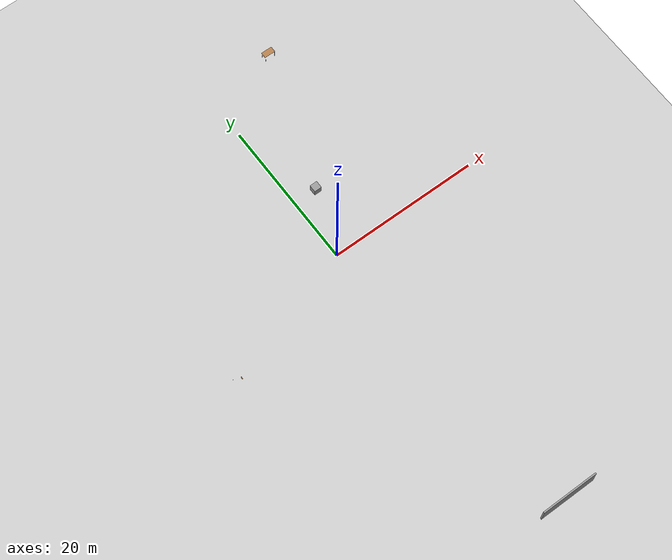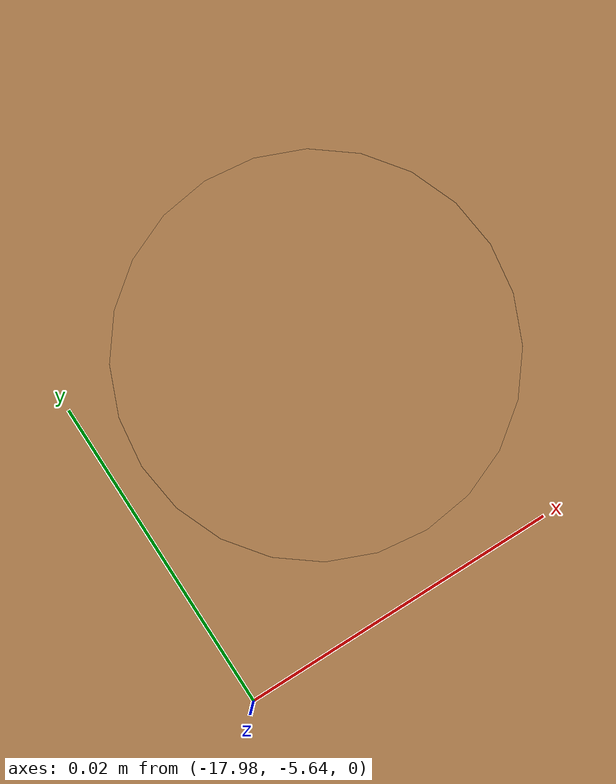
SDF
<sdf version="1.7">
 <world name="default">
  <light name="sun" type="directional">
   <pose>0 0 10 0 -0 0</pose>
   <diffuse>0.8 0.8 0.8 1</diffuse>
   <specular>0.2 0.2 0.2 1</specular>
   <attenuation>
    <range>1000</range>
    <constant>0.9</constant>
    <linear>0.01</linear>
    <quadratic>0.001</quadratic>
   </attenuation>
   <direction>-0.5 0.1 -0.9</direction>
   <spot><inner_angle>0</inner_angle><outer_angle>0</outer_angle><falloff>0</falloff></spot>
  </light>
  <model name="ground_plane">
   <static>1</static>
   <link name="link">
    <collision name="collision">
     <geometry><plane><normal>0 0 1</normal><size>100 100</size></plane></geometry>
     <surface>
      <contact><collide_bitmask>65535</collide_bitmask></contact>
      <friction><ode><mu>100</mu><mu2>50</mu2></ode></friction>
     </surface>
    </collision>
    <visual name="visual">
     <cast_shadows>0</cast_shadows>
     <geometry><plane><normal>0 0 1</normal><size>100 100</size></plane></geometry>
     <material>
      <script><uri>file://media/materials/scripts/gazebo.material</uri><name>Gazebo/Grey</name></script>
     </material>
    </visual>
   </link>
  </model>
  <gravity>0 0 -9.8</gravity>
  <magnetic_field>6e-06 2.3e-05 -4.2e-05</magnetic_field>
  <atmosphere type="adiabatic"/>
  <physics type="ode">
   <max_step_size>0.001</max_step_size>
   <real_time_factor>1</real_time_factor>
   <real_time_update_rate>1000</real_time_update_rate>
  </physics>
  <scene><ambient>0.4 0.4 0.4 1</ambient><background>0.7 0.7 0.7 1</background><shadows>1</shadows></scene>
  <spherical_coordinates>
   <surface_model>EARTH_WGS84</surface_model>
   <latitude_deg>0</latitude_deg>
   <longitude_deg>0</longitude_deg>
   <elevation>0</elevation>
   <heading_deg>0</heading_deg>
  </spherical_coordinates>
  <light name="user_point_light_0" type="point">
   <pose>-1.12964 2.2231 1 0 -0 0</pose>
   <diffuse>0.5 0.5 0.5 1</diffuse>
   <specular>0.1 0.1 0.1 1</specular>
   <attenuation>
    <range>20</range>
    <constant>0.5</constant>
    <linear>0.01</linear>
    <quadratic>0.001</quadratic>
   </attenuation>
   <cast_shadows>0</cast_shadows>
   <direction>0 0 -1</direction>
  </light>
  <model name="unit_box">
   <pose>3.12889 8.4348 0.499995 1e-05 -0 0</pose>
   <link name="link">
    <inertial>
     <mass>1</mass>
     <inertia>
      <ixx>0.166667</ixx>
      <ixy>0</ixy>
      <ixz>0</ixz>
      <iyy>0.166667</iyy>
      <iyz>0</iyz>
      <izz>0.166667</izz>
     </inertia>
    </inertial>
    <collision name="collision"><geometry><box><size>1 1 1</size></box></geometry></collision>
    <visual name="visual">
     <geometry><box><size>1 1 1</size></box></geometry>
     <material>
      <script><name>Gazebo/Grey</name><uri>file://media/materials/scripts/gazebo.material</uri></script>
     </material>
    </visual>
   </link>
  </model>
  <model name="wooden_peg_board">
   <frame name="wooden_board::__model__" attached_to="wooden_board::base">
    <pose relative_to="__model__">0 0 0 0 -0 0</pose>
   </frame>
   <link name="wooden_board::base">
    <pose relative_to="wooden_board::__model__">0 0 0.00523 0 -0 0</pose>
    <inertial>
     <mass>0.2765</mass>
     <inertia>
      <ixx>0.0025148</ixx>
      <ixy>0</ixy>
      <ixz>0</ixz>
      <iyy>0.00024037</iyy>
      <iyz>0</iyz>
      <izz>0.00275013</izz>
     </inertia>
    </inertial>
    <collision name="collision">
     <geometry><box><size>0.1016 0.3302 0.01046</size></box></geometry>
     <surface>
      <contact>
       <poissons_ratio>0.347</poissons_ratio>
       <elastic_modulus>8.8e+09</elastic_modulus>
       <ode><kp>100000</kp><kd>100</kd><max_vel>100</max_vel><min_depth>0.001</min_depth></ode>
      </contact>
      <friction>
       <torsional>
        <coefficient>1</coefficient>
        <use_patch_radius>0</use_patch_radius>
        <surface_radius>0.01</surface_radius>
       </torsional>
      </friction>
     </surface>
    </collision>
    <visual name="visual">
     <geometry><box><size>0.1016 0.3302 0.01046</size></box></geometry>
     <material>
      <script><uri>file://media/materials/scripts/gazebo.material</uri><name>Gazebo/Wood</name></script>
     </material>
    </visual>
    <visual name="tee_nut_1">
     <pose>0 -0.116 0 0 -0 0</pose>
     <geometry><cylinder><radius>0.00635</radius><length>0.0105646</length></cylinder></geometry>
     <material>
      <script><uri>file://media/materials/scripts/gazebo.material</uri><name>Gazebo/Grey</name></script>
     </material>
    </visual>
    <visual name="tee_nut_2">
     <pose>0 -0.038 0 0 -0 0</pose>
     <geometry><cylinder><radius>0.00635</radius><length>0.0105646</length></cylinder></geometry>
     <material>
      <script><uri>file://media/materials/scripts/gazebo.material</uri><name>Gazebo/Grey</name></script>
     </material>
    </visual>
    <visual name="tee_nut_3">
     <pose>0 0.038 0 0 -0 0</pose>
     <geometry><cylinder><radius>0.00635</radius><length>0.0105646</length></cylinder></geometry>
     <material>
      <script><uri>file://media/materials/scripts/gazebo.material</uri><name>Gazebo/Grey</name></script>
     </material>
    </visual>
    <visual name="tee_nut_4">
     <pose>0 0.116 0 0 -0 0</pose>
     <geometry><cylinder><radius>0.00635</radius><length>0.0105646</length></cylinder></geometry>
     <material>
      <script><uri>file://media/materials/scripts/gazebo.material</uri><name>Gazebo/Grey</name></script>
     </material>
    </visual>
   </link>
   <frame name="peg::__model__" attached_to="peg::link">
    <pose relative_to="__model__">0 0.116 0 0 -0 0</pose>
   </frame>
   <link name="peg::link">
    <pose relative_to="peg::__model__">0 0 0.04 0 -0 0</pose>
    <inertial>
     <mass>0.0175</mass>
     <inertia>
      <ixx>9.74923e-06</ixx>
      <ixy>0</ixy>
      <ixz>0</ixz>
      <iyy>9.74923e-06</iyy>
      <iyz>0</iyz>
      <izz>8.31797e-07</izz>
     </inertia>
    </inertial>
    <collision name="collision">
     <geometry><cylinder><radius>0.00975</radius><length>0.08</length></cylinder></geometry>
     <surface>
      <contact>
       <poissons_ratio>0.347</poissons_ratio>
       <elastic_modulus>8.8e+09</elastic_modulus>
       <ode><kp>100000</kp><kd>100</kd><max_vel>100</max_vel><min_depth>0.001</min_depth></ode>
      </contact>
      <friction>
       <torsional>
        <coefficient>1</coefficient>
        <use_patch_radius>0</use_patch_radius>
        <surface_radius>0.01</surface_radius>
       </torsional>
      </friction>
     </surface>
    </collision>
    <visual name="visual">
     <geometry><cylinder><radius>0.00975</radius><length>0.08</length></cylinder></geometry>
     <material>
      <script><uri>file://media/materials/scripts/gazebo.material</uri><name>Gazebo/Wood</name></script>
     </material>
    </visual>
   </link>
   <joint name="board_peg" type="revolute">
    <parent>wooden_board::base</parent>
    <child>peg::link</child>
    <axis>
     <xyz>0 0 1</xyz>
     <limit><upper>0</upper><lower>0</lower></limit>
     <dynamics><spring_reference>0</spring_reference><spring_stiffness>0</spring_stiffness></dynamics>
    </axis>
   </joint>
   <pose>-17.9665 -5.74159 0 0 -0 0</pose>
  </model>
  <model name="wooden_peg">
   <link name="link">
    <pose>0 0 0.04 0 -0 0</pose>
    <inertial>
     <mass>0.0175</mass>
     <inertia>
      <ixx>9.74923e-06</ixx>
      <ixy>0</ixy>
      <ixz>0</ixz>
      <iyy>9.74923e-06</iyy>
      <iyz>0</iyz>
      <izz>8.31797e-07</izz>
     </inertia>
    </inertial>
    <collision name="collision">
     <geometry><cylinder><radius>0.00975</radius><length>0.08</length></cylinder></geometry>
     <surface>
      <contact>
       <poissons_ratio>0.347</poissons_ratio>
       <elastic_modulus>8.8e+09</elastic_modulus>
       <ode><kp>100000</kp><kd>100</kd><max_vel>100</max_vel><min_depth>0.001</min_depth></ode>
      </contact>
      <friction>
       <torsional>
        <coefficient>1</coefficient>
        <use_patch_radius>0</use_patch_radius>
        <surface_radius>0.01</surface_radius>
       </torsional>
      </friction>
     </surface>
    </collision>
    <visual name="visual">
     <geometry><cylinder><radius>0.00975</radius><length>0.08</length></cylinder></geometry>
     <material>
      <script><uri>file://media/materials/scripts/gazebo.material</uri><name>Gazebo/Wood</name></script>
     </material>
    </visual>
   </link>
   <pose>-27.9427 14.2885 0 0 -0 0</pose>
  </model>
  <model name="table">
   <static>1</static>
   <link name="link">
    <collision name="surface">
     <pose>0 0 1 0 -0 0</pose>
     <geometry><box><size>1.5 0.8 0.03</size></box></geometry>
     <surface><friction><ode><mu>0.6</mu><mu2>0.6</mu2></ode></friction></surface>
    </collision>
    <visual name="visual1">
     <pose>0 0 1 0 -0 0</pose>
     <geometry><box><size>1.5 0.8 0.03</size></box></geometry>
     <material>
      <script><uri>file://media/materials/scripts/gazebo.material</uri><name>Gazebo/Wood</name></script>
     </material>
    </visual>
    <collision name="front_left_leg">
     <pose>0.68 0.38 0.5 0 -0 0</pose>
     <geometry><cylinder><radius>0.02</radius><length>1</length></cylinder></geometry>
    </collision>
    <visual name="front_left_leg">
     <pose>0.68 0.38 0.5 0 -0 0</pose>
     <geometry><cylinder><radius>0.02</radius><length>1</length></cylinder></geometry>
     <material>
      <script><uri>file://media/materials/scripts/gazebo.material</uri><name>Gazebo/Grey</name></script>
     </material>
    </visual>
    <collision name="front_right_leg">
     <pose>0.68 -0.38 0.5 0 -0 0</pose>
     <geometry><cylinder><radius>0.02</radius><length>1</length></cylinder></geometry>
    </collision>
    <visual name="front_right_leg">
     <pose>0.68 -0.38 0.5 0 -0 0</pose>
     <geometry><cylinder><radius>0.02</radius><length>1</length></cylinder></geometry>
     <material>
      <script><uri>file://media/materials/scripts/gazebo.material</uri><name>Gazebo/Grey</name></script>
     </material>
    </visual>
    <collision name="back_right_leg">
     <pose>-0.68 -0.38 0.5 0 -0 0</pose>
     <geometry><cylinder><radius>0.02</radius><length>1</length></cylinder></geometry>
    </collision>
    <visual name="back_right_leg">
     <pose>-0.68 -0.38 0.5 0 -0 0</pose>
     <geometry><cylinder><radius>0.02</radius><length>1</length></cylinder></geometry>
     <material>
      <script><uri>file://media/materials/scripts/gazebo.material</uri><name>Gazebo/Grey</name></script>
     </material>
    </visual>
    <collision name="back_left_leg">
     <pose>-0.68 0.38 0.5 0 -0 0</pose>
     <geometry><cylinder><radius>0.02</radius><length>1</length></cylinder></geometry>
    </collision>
    <visual name="back_left_leg">
     <pose>-0.68 0.38 0.5 0 -0 0</pose>
     <geometry><cylinder><radius>0.02</radius><length>1</length></cylinder></geometry>
     <material>
      <script><uri>file://media/materials/scripts/gazebo.material</uri><name>Gazebo/Grey</name></script>
     </material>
    </visual>
   </link>
   <pose>9.38068 26.8359 0 0 -0 0</pose>
  </model>
  <model name="wood_cube_5cm">
   <link name="link">
    <pose>0 0 0.025 0 -0 0</pose>
    <inertial>
     <mass>0.0565</mass>
     <inertia>
      <ixx>2.35417e-05</ixx>
      <ixy>0</ixy>
      <ixz>0</ixz>
      <iyy>2.35417e-05</iyy>
      <iyz>0</iyz>
      <izz>2.35417e-05</izz>
     </inertia>
    </inertial>
    <collision name="collision">
     <geometry><box><size>0.05 0.05 0.05</size></box></geometry>
     <surface>
      <contact>
       <poissons_ratio>0.347</poissons_ratio>
       <elastic_modulus>8.8e+09</elastic_modulus>
       <ode><kp>100000</kp><kd>1</kd><max_vel>1</max_vel><min_depth>0.001</min_depth></ode>
      </contact>
      <friction>
       <torsional>
        <coefficient>1</coefficient>
        <use_patch_radius>0</use_patch_radius>
        <surface_radius>0.05</surface_radius>
       </torsional>
      </friction>
     </surface>
    </collision>
    <visual name="visual">
     <geometry><box><size>0.05 0.05 0.05</size></box></geometry>
     <material>
      <script><uri>file://media/materials/scripts/gazebo.material</uri><name>Gazebo/Wood</name></script>
     </material>
    </visual>
   </link>
   <pose>-18.9118 -5.31557 0 0 -0 0</pose>
  </model>
  <model name="grey_wall">
   <static>1</static>
   <link name="link">
    <pose>0 0 1.4 0 -0 0</pose>
    <collision name="collision"><geometry><box><size>7.5 0.2 2.8</size></box></geometry></collision>
    <visual name="visual">
     <cast_shadows>0</cast_shadows>
     <geometry><box><size>7.5 0.2 2.8</size></box></geometry>
     <material>
      <script>
       <uri>model://grey_wall/materials/scripts</uri>
       <uri>model://grey_wall/materials/textures</uri>
       <name>vrc/grey_wall</name>
      </script>
     </material>
    </visual>
   </link>
   <pose>2.89012 -39.1208 0 0 -0 0</pose>
  </model>
 </world>
</sdf>
